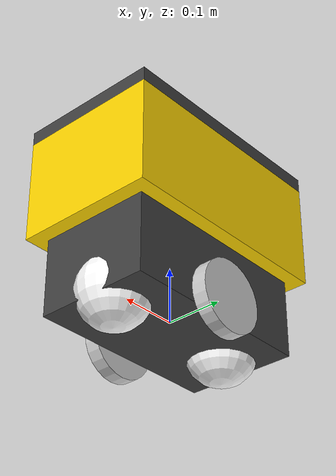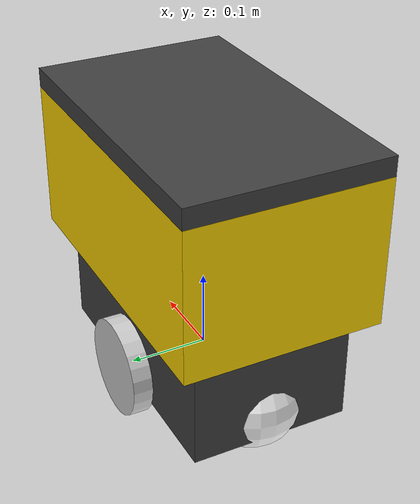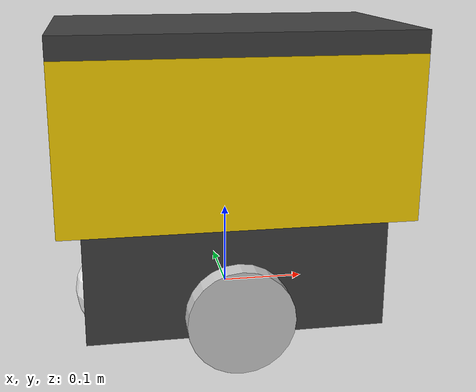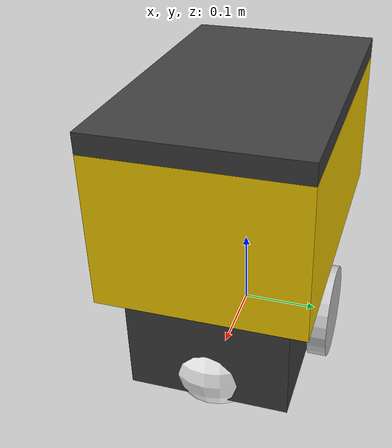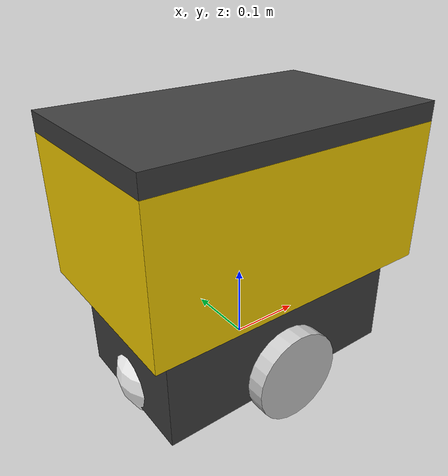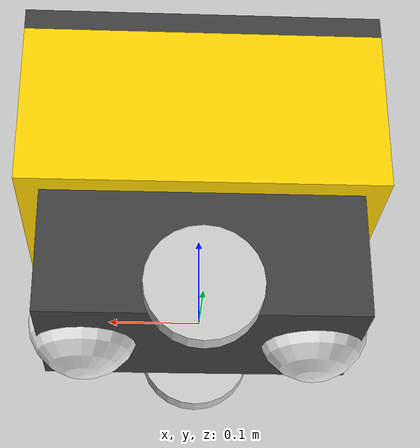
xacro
<?xml version="1.0"?>
<robot xmlns:xacro="http://www.ros.org/wiki/xacro" >

    <xacro:include filename="inertial_macros.xacro"/>

    <xacro:property name="chassis_base_length" value="0.3556"/>
    <xacro:property name="chassis_base_width" value="0.2032"/>
    <xacro:property name="chassis_base_height" value="0.1397"/>
    <xacro:property name="chassis_base_mass" value="1.0"/>
    <xacro:property name="chassis_top_length" value="0.4064"/>
    <xacro:property name="chassis_top_width" value="0.254"/>
    <xacro:property name="chassis_top_height" value="0.1905"/>
    <xacro:property name="chassis_top_mass" value="1.0"/>
    <xacro:property name="lid_thickness" value="0.0254"/>
    <xacro:property name="wheel_radius" value="0.0635"/>
    <xacro:property name="wheel_thickness" value="0.0254"/>
    <xacro:property name="wheel_mass" value="0.05"/>
    <xacro:property name="wheel_offset_y" value="0.1143"/>
    <xacro:property name="wheel_offset_z" value="0.026035"/>
    <xacro:property name="front_caster_wheel_offset_x" value="0.127"/>
    <xacro:property name="back_caster_wheel_offset_x" value="-0.127"/>

    <material name="white">
        <color rgba="1 1 1 1" />
    </material>

    <material name="orange">
        <color rgba="1 0.3 0.1 1"/>
    </material>

    <material name="blue">
        <color rgba="0.2 0.2 1 1"/>
    </material>

    <material name="black">
        <color rgba="0.25 0.25 0.25 1"/>
    </material>

    <material name="red">
        <color rgba="1 0 0 1"/>
    </material>

    <material name="gray">
        <color rgba="0.8 0.8 0.8 1"/>
    </material>

    <material name="gold">
        <color rgba="1 0.84 0 1"/>
    </material>

    <!-- BASE LINK -->

    <link name="base_link">

    </link>

    <!-- BASE_FOOTPRINT LINK -->

    <joint name="base_footprint_joint" type="fixed">
        <parent link="base_link"/>
        <child link="base_footprint"/>
        <origin xyz="0 0 0" rpy="0 0 0"/>
    </joint>

    <link name="base_footprint">
    </link>

    <!-- CHASSIS BASE LINK -->

    <joint name="chassis_base_joint" type="fixed">
        <parent link="base_link"/>
        <child link="chassis_base"/>
        <origin xyz="${-chassis_base_length/2} 0 ${-wheel_offset_z}"/>
    </joint>

    <link name="chassis_base">
        <visual>
            <origin xyz="${chassis_base_length/2} 0 ${chassis_base_height/2}"/>
            <geometry>
                <box size="${chassis_base_length} ${chassis_base_width} ${chassis_base_height}"/>
            </geometry>
            <material name="black"/>
        </visual>
        <collision>
            <origin xyz="${chassis_base_length/2} 0 ${chassis_base_height/2}"/>
            <geometry>
                <box size="${chassis_base_length} ${chassis_base_width} ${chassis_base_height}"/>
            </geometry>
        </collision>
        <xacro:inertial_box mass="0.5" x="${chassis_base_length}" y="${chassis_base_width}" z="${chassis_base_height}">
            <!-- origin should match visual origin -->
            <origin xyz="${chassis_base_length/2} 0 ${chassis_base_height/2}" rpy="0 0 0"/>
        </xacro:inertial_box>
    </link>

    <gazebo reference="chassis_base">
        <material>Gazebo/Black</material>
    </gazebo>

    <!-- CHASSIS TOP LINK -->

    <joint name="chassis_top_joint" type="fixed">
        <origin xyz="${chassis_base_length/2} 0 ${chassis_base_height}" rpy="0 0 0" />
        <parent link="chassis_base"/>
        <child link="chassis_top"/>
    </joint>

    <link name="chassis_top">
        <visual>
            <origin xyz="0 0 ${chassis_top_height/2}"/>
            <geometry>
                <box size="${chassis_top_length} ${chassis_top_width} ${chassis_top_height}" />
            </geometry>
            <material name="gold" />
        </visual>
        <collision>
            <origin xyz="0 0 0" rpy="0 0 0" />
            <geometry>
                <box size="${chassis_top_length} ${chassis_top_width} ${chassis_top_height}" />
            </geometry>
        </collision>
    </link>

    <gazebo reference="chassis_top">
        <material>Gazebo/Gold</material>
    </gazebo>

    <!-- LID LINK -->

    <joint name="lid_joint" type="fixed">
        <origin xyz="0 0 ${chassis_top_height}" />
        <parent link="chassis_top"/>
        <child link="lid"/>
    </joint>

    <link name="lid">
        <visual>
            <origin xyz="0 0 ${lid_thickness/2}" />
            <geometry>
                <box size="${chassis_top_length} ${chassis_top_width} ${lid_thickness}" />
            </geometry>
            <material name="black" />
        </visual>
        <collision>
            <origin xyz="0 0 ${lid_thickness}" />
            <geometry>
                <box size="${chassis_top_length} ${chassis_top_width} ${lid_thickness}" />
            </geometry>
        </collision>
    </link>

    <gazebo reference="lid">
        <material>Gazebo/Black</material>
    </gazebo>

    <!-- LEFT WHEEL LINK -->

    <joint name="left_wheel_joint" type="continuous">
        <parent link="base_link"/>
        <child link="left_wheel"/>
        <origin xyz="0 ${wheel_offset_y} 0" rpy="-${pi/2} 0 0" />
        <axis xyz="0 0 1"/>
    </joint>

    <link name="left_wheel">
        <visual>
            <geometry>
                <cylinder radius="${wheel_radius}" length="${wheel_thickness}"/>
            </geometry>
            <material name="gray"/>
        </visual>
        <collision>
            <geometry>
                <sphere radius="${wheel_radius}"/>
            </geometry>
        </collision>
        <xacro:inertial_cylinder mass="${wheel_mass}" length="${wheel_thickness}" radius="${wheel_radius}">
            <!-- origin should match visual origin -->
            <origin xyz="0 0 0" rpy="0 0 0"/>
        </xacro:inertial_cylinder>
    </link>

    <gazebo reference="left_wheel">
        <material>Gazebo/Gray</material>
    </gazebo>

    <!-- RIGHT WHEEL LINK -->

    <joint name="right_wheel_joint" type="continuous">
        <parent link="base_link"/>
        <child link="right_wheel"/>
        <origin xyz="0 ${-wheel_offset_y} 0" rpy="${pi/2} 0 0" />
        <axis xyz="0 0 -1"/>
    </joint>

    <link name="right_wheel">
        <visual>
            <geometry>
                <cylinder radius="${wheel_radius}" length="${wheel_thickness}"/>
            </geometry>-
            <material name="gray"/>
        </visual>
        <collision>
            <geometry>
                <sphere radius="${wheel_radius}"/>
            </geometry>
        </collision>
        <xacro:inertial_cylinder mass="${wheel_mass}" length="${wheel_thickness}" radius="${wheel_radius}">
            <!-- origin should match visual origin -->
            <origin xyz="0 0 0" rpy="0 0 0"/>
        </xacro:inertial_cylinder>
    </link>

    <gazebo reference="right_wheel">
        <material>Gazebo/Gray</material>
    </gazebo>

    <!-- FRONT CASTER WHEEL LINK -->

    <joint name="front_caster_wheel_joint" type="fixed">
        <parent link="base_link"/>
        <child link="front_caster_wheel"/>
        <origin xyz="${front_caster_wheel_offset_x} 0 0"/>
    </joint>

    <link name="front_caster_wheel">
        <visual>
            <geometry>
                <sphere radius="${wheel_radius}"/>
            </geometry>
            <material name="white"/>
        </visual>
        <collision>
            <geometry>
                <sphere radius="${wheel_radius}"/>
            </geometry>
        </collision>
        <xacro:inertial_sphere mass="${wheel_mass}" radius="${wheel_radius}">
            <origin xyz="0 0 0" rpy="0 0 0"/>
        </xacro:inertial_sphere>
    </link>

    <gazebo reference="front_caster_wheel">
        <material>Gazebo/White</material>
        <mu1 value="0.001"/>
        <mu2 value="0.001"/>
    </gazebo>

    <!-- BACK CASTER WHEEL LINK -->

    <joint name="back_caster_wheel_joint" type="fixed">
        <parent link="base_link"/>
        <child link="back_caster_wheel"/>
        <origin xyz="${back_caster_wheel_offset_x} 0 0"/>
    </joint>

    <link name="back_caster_wheel">
        <visual>
            <geometry>
                <sphere radius="${wheel_radius}"/>
            </geometry>
            <material name="white"/>
        </visual>
        <collision>
            <geometry>
                <sphere radius="${wheel_radius}"/>
            </geometry>
        </collision>
        <xacro:inertial_sphere mass="${wheel_mass}" radius="${wheel_radius}">
            <origin xyz="0 0 0" rpy="0 0 0"/>
        </xacro:inertial_sphere>
    </link>

    <gazebo reference="back_caster_wheel">
        <material>Gazebo/White</material>
        <mu1 value="0.001"/>
        <mu2 value="0.001"/>
    </gazebo>

</robot>
